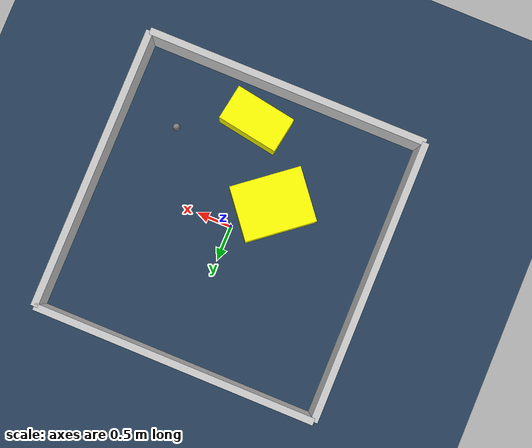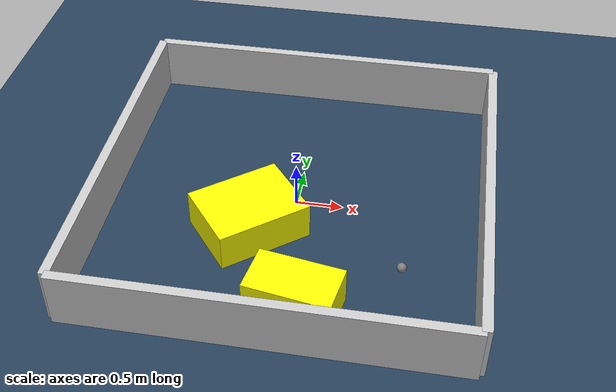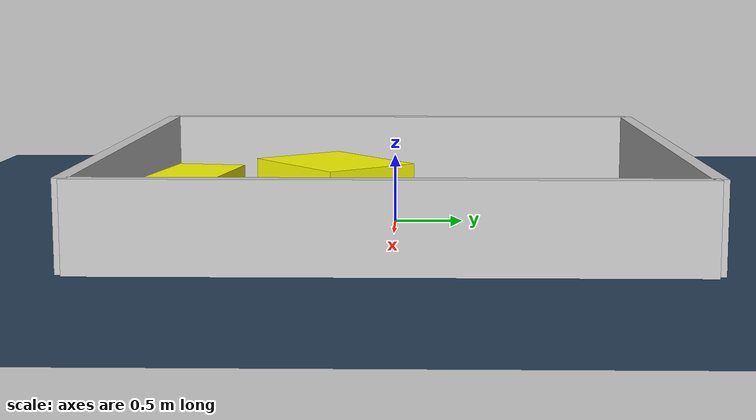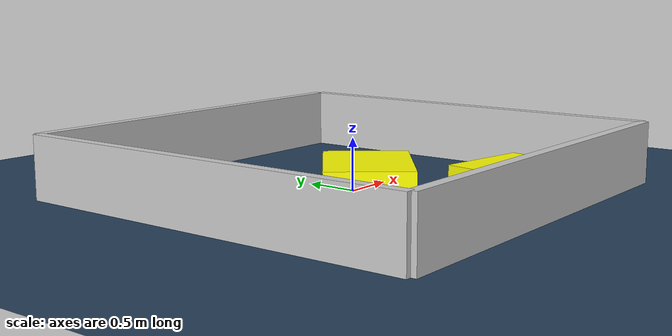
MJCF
<?xml version="1.0" ?>
<mujoco model="generated_environment">
  <option timestep="0.01" integrator="RK4" cone="elliptic"/>
  <default>
    <geom density="1"/>
  </default>
  <asset>
    <texture builtin="gradient" height="3072" rgb1="0.3 0.5 0.7" rgb2="0 0 0" type="skybox" width="512"/>
    <texture builtin="checker" height="300" mark="edge" markrgb="0.8 0.8 0.8" name="groundplane" rgb1="0.2 0.3 0.4" rgb2="0.1 0.2 0.3" type="2d" width="300"/>
    <material name="groundplane" reflectance="0.2" texrepeat="5 5" texture="groundplane" texuniform="true"/>
    <material name="robot" rgba="0.0 1.0 0.0 1"/>
  </asset>
  <worldbody>
    <light dir="0 0 -1" directional="true" pos="0 0 1.5"/>
    <geom condim="4" friction="1.0 0.005 0.001" material="groundplane" name="floor" size="0 0 0.05" type="plane"/>
    <body name="walls">
      <geom name="wall_1" condim="4" pos="-2.0 0.0 0.3" rgba="0.800000011920929 0.800000011920929 0.800000011920929 1.0" size="0.05 2.0 0.3" type="box"/>
      <geom name="wall_2" condim="4" pos="2.0 0.0 0.3" rgba="0.800000011920929 0.800000011920929 0.800000011920929 1.0" size="0.05 2.0 0.3" type="box"/>
      <geom name="wall_3" condim="4" pos="0.0 -2.0 0.3" rgba="0.800000011920929 0.800000011920929 0.800000011920929 1.0" size="2.0 0.05 0.3" type="box"/>
      <geom name="wall_4" condim="4" pos="0.0 2.0 0.3" rgba="0.800000011920929 0.800000011920929 0.800000011920929 1.0" size="2.0 0.05 0.3" type="box"/>
    </body>
    <body name="robot">
      <joint name="joint_x" type="slide" pos="0 0 0" axis="1 0 0"/>
      <joint name="joint_y" type="slide" pos="0 0 0" axis="0 1 0"/>
      <geom name="robot" type="sphere" pos="1.209902953800421 -0.9762631798506638 0.2" size="0.05" mass="5." friction="1.0 0.005 0.0001" condim="4"/>
      <site name="sensor_ball"/>
    </body>
    <body name="obstacle_1_movable">
      <geom name="obstacle_1_movable" condim="4" pos="0.22739491040308168 -1.475117901020467 0.2" euler="0 0 170.32785960364325" friction="1.0 0.005 0.001" rgba="1 1 0 1" size="0.44169469621368374 0.25696296934387014 0.2" type="box" mass="0.1"/>
      <joint type="free"/>
    </body>
    <body name="obstacle_2_movable">
      <geom name="obstacle_2_movable" condim="4" pos="-0.41911974731361856 -0.48115018461918146 0.2" euler="0 0 38.45083239501853" friction="1.0 0.005 0.001" rgba="1 1 0 1" size="0.5055665616107938 0.39191805199245233 0.2" type="box" mass="0.1"/>
      <joint type="free"/>
    </body>
  </worldbody>
  <actuator>
    <motor name="actuator_x" joint="joint_x" gear="1" ctrlrange="-1 1"/>
    <motor name="actuator_y" joint="joint_y" gear="1" ctrlrange="-1 1"/>
  </actuator>
</mujoco>
